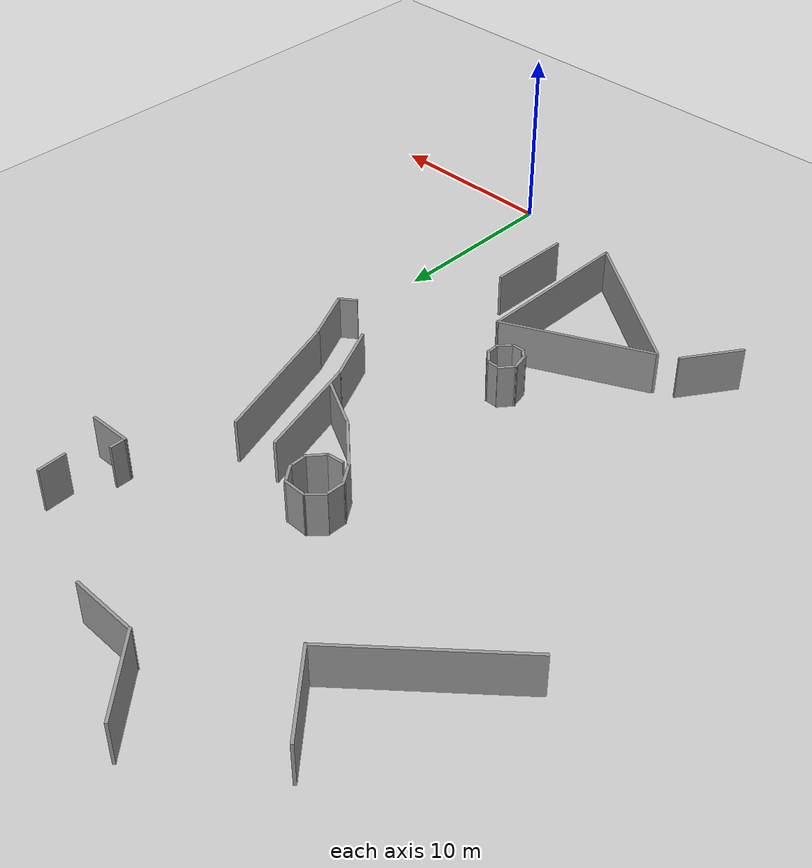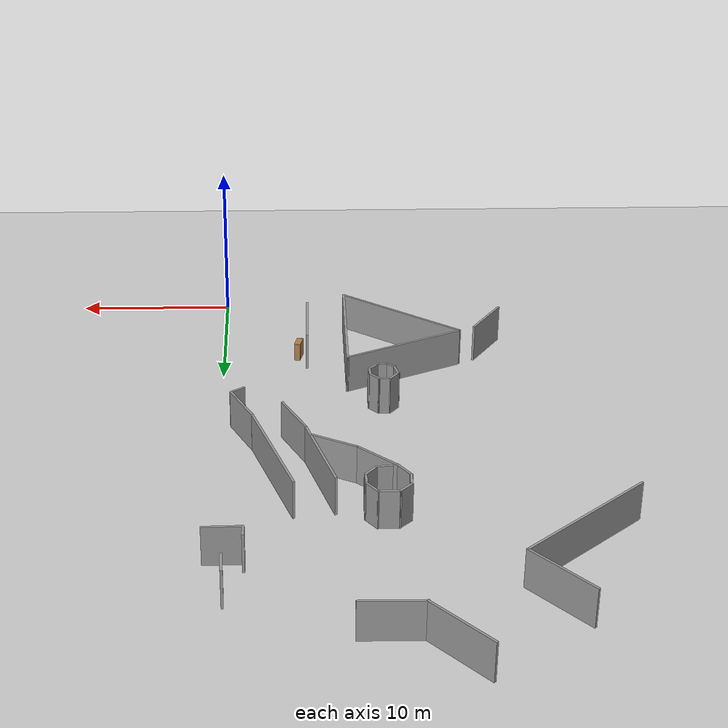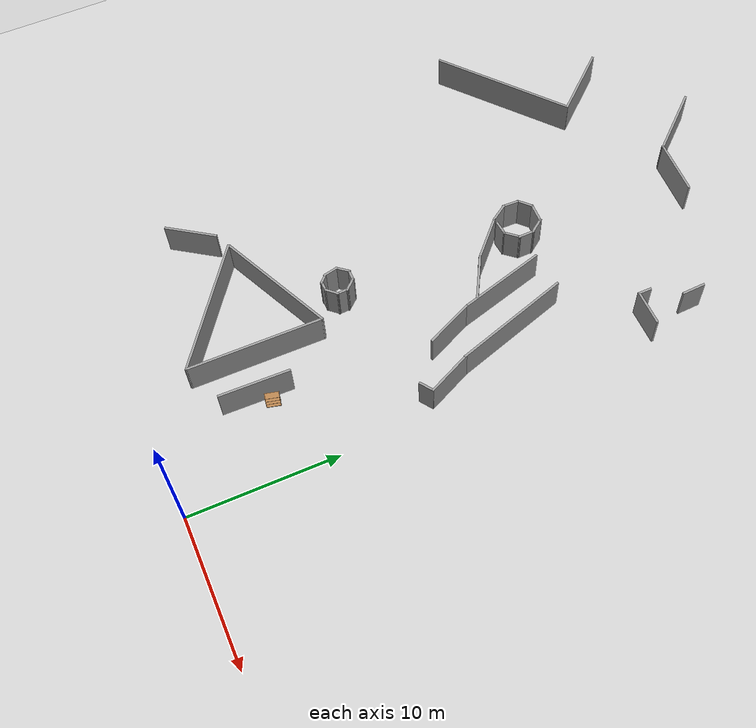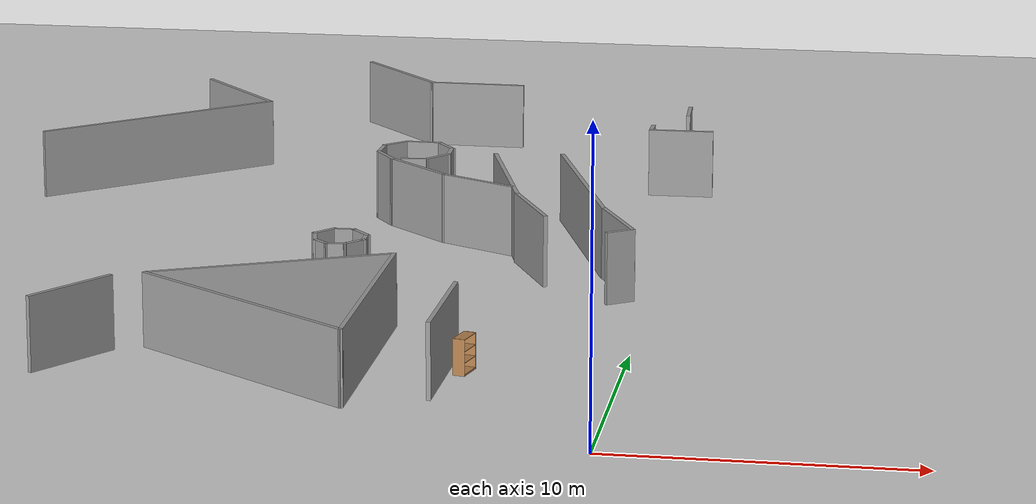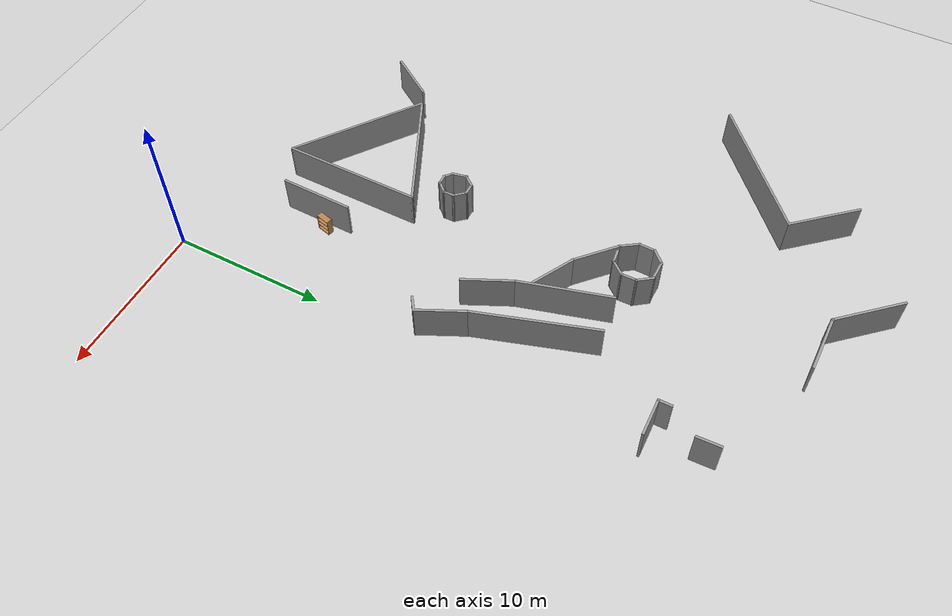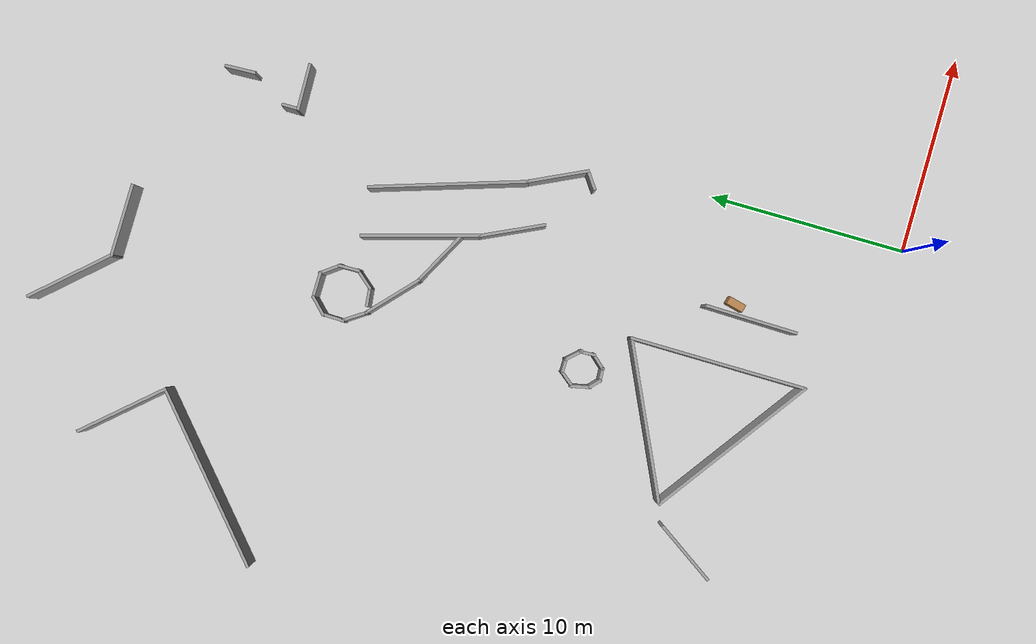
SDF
<sdf version="1.6">
 <world name="default">
  <model name="ground_plane">
   <static>1</static>
   <link name="link">
    <collision name="collision">
     <geometry><plane><normal>0 0 1</normal><size>100 100</size></plane></geometry>
     <surface><friction><ode><mu>100</mu><mu2>50</mu2></ode></friction></surface>
    </collision>
    <visual name="visual">
     <cast_shadows>0</cast_shadows>
     <geometry><plane><normal>0 0 1</normal><size>100 100</size></plane></geometry>
     <material>
      <script><uri>file://media/materials/scripts/gazebo.material</uri><name>Gazebo/Grey</name></script>
     </material>
    </visual>
   </link>
  </model>
  <model name="mall_new_reduce_size">
   <pose>-6.8092 7.5529 0 0 -0 0</pose>
   <link name="Wall_102">
    <collision name="Wall_102_Collision">
     <geometry><box><size>0.911014 0.15 2.5</size></box></geometry>
     <pose>0 0 1.25 0 -0 0</pose>
    </collision>
    <visual name="Wall_102_Visual">
     <pose>0 0 1.25 0 -0 0</pose>
     <geometry><box><size>0.911014 0.15 2.5</size></box></geometry>
     <material>
      <script><uri>file://media/materials/scripts/gazebo.material</uri><name>Gazebo/Grey</name></script>
      <ambient>1 1 1 1</ambient>
     </material>
     <meta><layer>0</layer></meta>
    </visual>
    <pose>5.13908 23.8484 0 0 -0 -1.5708</pose>
   </link>
   <link name="Wall_103">
    <collision name="Wall_103_Collision">
     <geometry><box><size>2.3915 0.15 2.5</size></box></geometry>
     <pose>0 0 1.25 0 -0 0</pose>
    </collision>
    <visual name="Wall_103_Visual">
     <pose>0 0 1.25 0 -0 0</pose>
     <geometry><box><size>2.3915 0.15 2.5</size></box></geometry>
     <material>
      <script><uri>file://media/materials/scripts/gazebo.material</uri><name>Gazebo/Grey</name></script>
      <ambient>1 1 1 1</ambient>
     </material>
     <meta><layer>0</layer></meta>
    </visual>
    <pose>6.25953 23.4864 0 0 -0 0.02316</pose>
   </link>
   <link name="Wall_245">
    <collision name="Wall_245_Collision">
     <geometry><box><size>4.70437 0.15 2.5</size></box></geometry>
     <pose>0 0 1.25 0 -0 0</pose>
    </collision>
    <visual name="Wall_245_Visual">
     <pose>0 0 1.25 0 -0 0</pose>
     <geometry><box><size>4.70437 0.15 2.5</size></box></geometry>
     <material>
      <script><uri>file://media/materials/scripts/gazebo.material</uri><name>Gazebo/Grey</name></script>
      <ambient>1 1 1 1</ambient>
     </material>
     <meta><layer>0</layer></meta>
    </visual>
    <pose>1.30808 -0.867008 0 0 -0 -1.58931</pose>
   </link>
   <link name="Wall_262">
    <collision name="Wall_262_Collision">
     <geometry><box><size>8.27755 0.15 2.5</size></box></geometry>
     <pose>0 0 1.25 0 -0 0</pose>
    </collision>
    <visual name="Wall_262_Visual">
     <pose>0 0 1.25 0 -0 0</pose>
     <geometry><box><size>8.27755 0.15 2.5</size></box></geometry>
     <material>
      <script><uri>file://media/materials/scripts/gazebo.material</uri><name>Gazebo/Grey</name></script>
      <ambient>1 1 1 1</ambient>
     </material>
     <meta><layer>0</layer></meta>
    </visual>
    <pose>-4.89745 2.80266 0 0 -0 0.439294</pose>
   </link>
   <link name="Wall_263">
    <collision name="Wall_263_Collision">
     <geometry><box><size>9.01306 0.15 2.5</size></box></geometry>
     <pose>0 0 1.25 0 -0 0</pose>
    </collision>
    <visual name="Wall_263_Visual">
     <pose>0 0 1.25 0 -0 0</pose>
     <geometry><box><size>9.01306 0.15 2.5</size></box></geometry>
     <material>
      <script><uri>file://media/materials/scripts/gazebo.material</uri><name>Gazebo/Grey</name></script>
      <ambient>1 1 1 1</ambient>
     </material>
     <meta><layer>0</layer></meta>
    </visual>
    <pose>-1.21952 0.09951 0 0 -0 -1.57583</pose>
   </link>
   <link name="Wall_264">
    <collision name="Wall_264_Collision">
     <geometry><box><size>9.26002 0.15 2.5</size></box></geometry>
     <pose>0 0 1.25 0 -0 0</pose>
    </collision>
    <visual name="Wall_264_Visual">
     <pose>0 0 1.25 0 -0 0</pose>
     <geometry><box><size>9.26002 0.15 2.5</size></box></geometry>
     <material>
      <script><uri>file://media/materials/scripts/gazebo.material</uri><name>Gazebo/Grey</name></script>
      <ambient>1 1 1 1</ambient>
     </material>
     <meta><layer>0</layer></meta>
    </visual>
    <pose>-4.95834 -1.66721 0 0 -0 2.51669</pose>
   </link>
   <link name="Wall_296">
    <collision name="Wall_296_Collision">
     <geometry><box><size>3.4822 0.15 2.5</size></box></geometry>
     <pose>0 0 1.25 0 -0 0</pose>
    </collision>
    <visual name="Wall_296_Visual">
     <pose>0 0 1.25 0 -0 0</pose>
     <geometry><box><size>3.4822 0.15 2.5</size></box></geometry>
     <material>
      <script><uri>file://media/materials/scripts/gazebo.material</uri><name>Gazebo/Grey</name></script>
      <ambient>1 1 1 1</ambient>
     </material>
     <meta><layer>0</layer></meta>
    </visual>
    <pose>-10.6311 -0.878716 0 0 -0 -2.16478</pose>
   </link>
   <link name="Wall_320">
    <collision name="Wall_320_Collision">
     <geometry><box><size>0.75 0.15 2.5</size></box></geometry>
     <pose>0 0 1.25 0 -0 0</pose>
    </collision>
    <visual name="Wall_320_Visual">
     <pose>0 0 1.25 0 -0 0</pose>
     <geometry><box><size>0.75 0.15 2.5</size></box></geometry>
     <material>
      <script><uri>file://media/materials/scripts/gazebo.material</uri><name>Gazebo/Grey</name></script>
      <ambient>1 1 1 1</ambient>
     </material>
     <meta><layer>0</layer></meta>
    </visual>
    <pose>-3.3723 7.36494 0 0 -0 0</pose>
   </link>
   <link name="Wall_321">
    <collision name="Wall_321_Collision">
     <geometry><box><size>0.996431 0.15 2.5</size></box></geometry>
     <pose>0 0 1.25 0 -0 0</pose>
    </collision>
    <visual name="Wall_321_Visual">
     <pose>0 0 1.25 0 -0 0</pose>
     <geometry><box><size>0.996431 0.15 2.5</size></box></geometry>
     <material>
      <script><uri>file://media/materials/scripts/gazebo.material</uri><name>Gazebo/Grey</name></script>
      <ambient>1 1 1 1</ambient>
     </material>
     <meta><layer>0</layer></meta>
    </visual>
    <pose>-2.78786 7.05157 0 0 -0 -0.833746</pose>
   </link>
   <link name="Wall_322">
    <collision name="Wall_322_Collision">
     <geometry><box><size>0.808487 0.15 2.5</size></box></geometry>
     <pose>0 0 1.25 0 -0 0</pose>
    </collision>
    <visual name="Wall_322_Visual">
     <pose>0 0 1.25 0 -0 0</pose>
     <geometry><box><size>0.808487 0.15 2.5</size></box></geometry>
     <material>
      <script><uri>file://media/materials/scripts/gazebo.material</uri><name>Gazebo/Grey</name></script>
      <ambient>1 1 1 1</ambient>
     </material>
     <meta><layer>0</layer></meta>
    </visual>
    <pose>-2.51788 6.42855 0 0 -0 -1.52686</pose>
   </link>
   <link name="Wall_323">
    <collision name="Wall_323_Collision">
     <geometry><box><size>0.955507 0.15 2.5</size></box></geometry>
     <pose>0 0 1.25 0 -0 0</pose>
    </collision>
    <visual name="Wall_323_Visual">
     <pose>0 0 1.25 0 -0 0</pose>
     <geometry><box><size>0.955507 0.15 2.5</size></box></geometry>
     <material>
      <script><uri>file://media/materials/scripts/gazebo.material</uri><name>Gazebo/Grey</name></script>
      <ambient>1 1 1 1</ambient>
     </material>
     <meta><layer>0</layer></meta>
    </visual>
    <pose>-2.77393 5.81089 0 0 -0 -2.30728</pose>
   </link>
   <link name="Wall_324">
    <collision name="Wall_324_Collision">
     <geometry><box><size>0.751238 0.15 2.5</size></box></geometry>
     <pose>0 0 1.25 0 -0 0</pose>
    </collision>
    <visual name="Wall_324_Visual">
     <pose>0 0 1.25 0 -0 0</pose>
     <geometry><box><size>0.751238 0.15 2.5</size></box></geometry>
     <material>
      <script><uri>file://media/materials/scripts/gazebo.material</uri><name>Gazebo/Grey</name></script>
      <ambient>1 1 1 1</ambient>
     </material>
     <meta><layer>0</layer></meta>
    </visual>
    <pose>-3.34446 5.48841 0 0 -0 -3.09342</pose>
   </link>
   <link name="Wall_325">
    <collision name="Wall_325_Collision">
     <geometry><box><size>0.725352 0.15 2.5</size></box></geometry>
     <pose>0 0 1.25 0 -0 0</pose>
    </collision>
    <visual name="Wall_325_Visual">
     <pose>0 0 1.25 0 -0 0</pose>
     <geometry><box><size>0.725352 0.15 2.5</size></box></geometry>
     <material>
      <script><uri>file://media/materials/scripts/gazebo.material</uri><name>Gazebo/Grey</name></script>
      <ambient>1 1 1 1</ambient>
     </material>
     <meta><layer>0</layer></meta>
    </visual>
    <pose>-3.85498 5.66037 0 0 -0 2.39175</pose>
   </link>
   <link name="Wall_326">
    <collision name="Wall_326_Collision">
     <geometry><box><size>1.06843 0.15 2.5</size></box></geometry>
     <pose>0 0 1.25 0 -0 0</pose>
    </collision>
    <visual name="Wall_326_Visual">
     <pose>0 0 1.25 0 -0 0</pose>
     <geometry><box><size>1.06843 0.15 2.5</size></box></geometry>
     <material>
      <script><uri>file://media/materials/scripts/gazebo.material</uri><name>Gazebo/Grey</name></script>
      <ambient>1 1 1 1</ambient>
     </material>
     <meta><layer>0</layer></meta>
    </visual>
    <pose>-4.18171 6.28601 0 0 -0 1.78347</pose>
   </link>
   <link name="Wall_327">
    <collision name="Wall_327_Collision">
     <geometry><box><size>0.999026 0.15 2.5</size></box></geometry>
     <pose>0 0 1.25 0 -0 0</pose>
    </collision>
    <visual name="Wall_327_Visual">
     <pose>0 0 1.25 0 -0 0</pose>
     <geometry><box><size>0.999026 0.15 2.5</size></box></geometry>
     <material>
      <script><uri>file://media/materials/scripts/gazebo.material</uri><name>Gazebo/Grey</name></script>
      <ambient>1 1 1 1</ambient>
     </material>
     <meta><layer>0</layer></meta>
    </visual>
    <pose>-4.0137 7.04728 0 0 -0 0.8968</pose>
   </link>
   <link name="Wall_53">
    <collision name="Wall_53_Collision">
     <geometry><box><size>4.7206 0.15 2.5</size></box></geometry>
     <pose>0 0 1.25 0 -0 0</pose>
    </collision>
    <visual name="Wall_53_Visual">
     <pose>0 0 1.25 0 -0 0</pose>
     <geometry><box><size>4.7206 0.15 2.5</size></box></geometry>
     <material>
      <script><uri>file://media/materials/scripts/gazebo.material</uri><name>Gazebo/Grey</name></script>
      <ambient>1 1 1 1</ambient>
     </material>
     <meta><layer>0</layer></meta>
    </visual>
    <pose>-5.84483 31.9838 0 0 -0 -0.834461</pose>
   </link>
   <link name="Wall_54">
    <collision name="Wall_54_Collision">
     <geometry><box><size>3.72999 0.15 2.5</size></box></geometry>
     <pose>0 0 1.25 0 -0 0</pose>
    </collision>
    <visual name="Wall_54_Visual">
     <pose>0 0 1.25 0 -0 0</pose>
     <geometry><box><size>3.72999 0.15 2.5</size></box></geometry>
     <material>
      <script><uri>file://media/materials/scripts/gazebo.material</uri><name>Gazebo/Grey</name></script>
      <ambient>1 1 1 1</ambient>
     </material>
     <meta><layer>0</layer></meta>
    </visual>
    <pose>-2.53762 30.2774 0 0 -0 -0.007328</pose>
   </link>
   <link name="Wall_58">
    <collision name="Wall_58_Collision">
     <geometry><box><size>4.86048 0.15 2.5</size></box></geometry>
     <pose>0 0 1.25 0 -0 0</pose>
    </collision>
    <visual name="Wall_58_Visual">
     <pose>0 0 1.25 0 -0 0</pose>
     <geometry><box><size>4.86048 0.15 2.5</size></box></geometry>
     <material>
      <script><uri>file://media/materials/scripts/gazebo.material</uri><name>Gazebo/Grey</name></script>
      <ambient>1 1 1 1</ambient>
     </material>
     <meta><layer>0</layer></meta>
    </visual>
    <pose>-11.5025 27.6865 0 0 -0 -0.844353</pose>
   </link>
   <link name="Wall_59">
    <collision name="Wall_59_Collision">
     <geometry><box><size>9.7239 0.15 2.5</size></box></geometry>
     <pose>0 0 1.25 0 -0 0</pose>
    </collision>
    <visual name="Wall_59_Visual">
     <pose>0 0 1.25 0 -0 0</pose>
     <geometry><box><size>9.7239 0.15 2.5</size></box></geometry>
     <material>
      <script><uri>file://media/materials/scripts/gazebo.material</uri><name>Gazebo/Grey</name></script>
      <ambient>1 1 1 1</ambient>
     </material>
     <meta><layer>0</layer></meta>
    </visual>
    <pose>-13.5451 22.7671 0 0 -0 -2.42416</pose>
   </link>
   <link name="Wall_75">
    <collision name="Wall_75_Collision">
     <geometry><box><size>0.996724 0.15 2.5</size></box></geometry>
     <pose>0 0 1.25 0 -0 0</pose>
    </collision>
    <visual name="Wall_75_Visual">
     <pose>0 0 1.25 0 -0 0</pose>
     <geometry><box><size>0.996724 0.15 2.5</size></box></geometry>
     <material>
      <script><uri>file://media/materials/scripts/gazebo.material</uri><name>Gazebo/Grey</name></script>
      <ambient>1 1 1 1</ambient>
     </material>
     <meta><layer>0</layer></meta>
    </visual>
    <pose>-2.811 17.5721 0 0 -0 0.113209</pose>
   </link>
   <link name="Wall_76">
    <collision name="Wall_76_Collision">
     <geometry><box><size>1.17578 0.15 2.5</size></box></geometry>
     <pose>0 0 1.25 0 -0 0</pose>
    </collision>
    <visual name="Wall_76_Visual">
     <pose>0 0 1.25 0 -0 0</pose>
     <geometry><box><size>1.17578 0.15 2.5</size></box></geometry>
     <material>
      <script><uri>file://media/materials/scripts/gazebo.material</uri><name>Gazebo/Grey</name></script>
      <ambient>1 1 1 1</ambient>
     </material>
     <meta><layer>0</layer></meta>
    </visual>
    <pose>-2.042 18.0205 0 0 -0 0.869416</pose>
   </link>
   <link name="Wall_77">
    <collision name="Wall_77_Collision">
     <geometry><box><size>1.10885 0.15 2.5</size></box></geometry>
     <pose>0 0 1.25 0 -0 0</pose>
    </collision>
    <visual name="Wall_77_Visual">
     <pose>0 0 1.25 0 -0 0</pose>
     <geometry><box><size>1.10885 0.15 2.5</size></box></geometry>
     <material>
      <script><uri>file://media/materials/scripts/gazebo.material</uri><name>Gazebo/Grey</name></script>
      <ambient>1 1 1 1</ambient>
     </material>
     <meta><layer>0</layer></meta>
    </visual>
    <pose>-1.71974 18.8742 0 0 -0 1.58893</pose>
   </link>
   <link name="Wall_78">
    <collision name="Wall_78_Collision">
     <geometry><box><size>1.20591 0.15 2.5</size></box></geometry>
     <pose>0 0 1.25 0 -0 0</pose>
    </collision>
    <visual name="Wall_78_Visual">
     <pose>0 0 1.25 0 -0 0</pose>
     <geometry><box><size>1.20591 0.15 2.5</size></box></geometry>
     <material>
      <script><uri>file://media/materials/scripts/gazebo.material</uri><name>Gazebo/Grey</name></script>
      <ambient>1 1 1 1</ambient>
     </material>
     <meta><layer>0</layer></meta>
    </visual>
    <pose>-2.02604 19.7599 0 0 -0 2.2101</pose>
   </link>
   <link name="Wall_79">
    <collision name="Wall_79_Collision">
     <geometry><box><size>1.36534 0.15 2.5</size></box></geometry>
     <pose>0 0 1.25 0 -0 0</pose>
    </collision>
    <visual name="Wall_79_Visual">
     <pose>0 0 1.25 0 -0 0</pose>
     <geometry><box><size>1.36534 0.15 2.5</size></box></geometry>
     <material>
      <script><uri>file://media/materials/scripts/gazebo.material</uri><name>Gazebo/Grey</name></script>
      <ambient>1 1 1 1</ambient>
     </material>
     <meta><layer>0</layer></meta>
    </visual>
    <pose>-2.95734 20.1705 0 0 -0 3.13444</pose>
   </link>
   <link name="Wall_80">
    <collision name="Wall_80_Collision">
     <geometry><box><size>1.1209 0.15 2.5</size></box></geometry>
     <pose>0 0 1.25 0 -0 0</pose>
    </collision>
    <visual name="Wall_80_Visual">
     <pose>0 0 1.25 0 -0 0</pose>
     <geometry><box><size>1.1209 0.15 2.5</size></box></geometry>
     <material>
      <script><uri>file://media/materials/scripts/gazebo.material</uri><name>Gazebo/Grey</name></script>
      <ambient>1 1 1 1</ambient>
     </material>
     <meta><layer>0</layer></meta>
    </visual>
    <pose>-3.91038 19.8251 0 0 -0 -2.36253</pose>
   </link>
   <link name="Wall_81">
    <collision name="Wall_81_Collision">
     <geometry><box><size>1.11992 0.15 2.5</size></box></geometry>
     <pose>0 0 1.25 0 -0 0</pose>
    </collision>
    <visual name="Wall_81_Visual">
     <pose>0 0 1.25 0 -0 0</pose>
     <geometry><box><size>1.11992 0.15 2.5</size></box></geometry>
     <material>
      <script><uri>file://media/materials/scripts/gazebo.material</uri><name>Gazebo/Grey</name></script>
      <ambient>1 1 1 1</ambient>
     </material>
     <meta><layer>0</layer></meta>
    </visual>
    <pose>-4.26885 18.9471 0 0 -0 -1.5977</pose>
   </link>
   <link name="Wall_82">
    <collision name="Wall_82_Collision">
     <geometry><box><size>1.37559 0.15 2.5</size></box></geometry>
     <pose>0 0 1.25 0 -0 0</pose>
    </collision>
    <visual name="Wall_82_Visual">
     <pose>0 0 1.25 0 -0 0</pose>
     <geometry><box><size>1.37559 0.15 2.5</size></box></geometry>
     <material>
      <script><uri>file://media/materials/scripts/gazebo.material</uri><name>Gazebo/Grey</name></script>
      <ambient>1 1 1 1</ambient>
     </material>
     <meta><layer>0</layer></meta>
    </visual>
    <pose>-3.93733 17.9642 0 0 -0 -0.973652</pose>
   </link>
   <link name="Wall_83">
    <collision name="Wall_83_Collision">
     <geometry><box><size>3.17702 0.15 2.5</size></box></geometry>
     <pose>0 0 1.25 0 -0 0</pose>
    </collision>
    <visual name="Wall_83_Visual">
     <pose>0 0 1.25 0 -0 0</pose>
     <geometry><box><size>3.17702 0.15 2.5</size></box></geometry>
     <material>
      <script><uri>file://media/materials/scripts/gazebo.material</uri><name>Gazebo/Grey</name></script>
      <ambient>1 1 1 1</ambient>
     </material>
     <meta><layer>0</layer></meta>
    </visual>
    <pose>-2.47787 16.4426 0 0 -0 -0.742728</pose>
   </link>
   <link name="Wall_84">
    <collision name="Wall_84_Collision">
     <geometry><box><size>3.09961 0.15 2.5</size></box></geometry>
     <pose>0 0 1.25 0 -0 0</pose>
    </collision>
    <visual name="Wall_84_Visual">
     <pose>0 0 1.25 0 -0 0</pose>
     <geometry><box><size>3.09961 0.15 2.5</size></box></geometry>
     <material>
      <script><uri>file://media/materials/scripts/gazebo.material</uri><name>Gazebo/Grey</name></script>
      <ambient>1 1 1 1</ambient>
     </material>
     <meta><layer>0</layer></meta>
    </visual>
    <pose>-0.052404 14.7261 0 0 -0 -0.489119</pose>
   </link>
   <link name="Wall_87">
    <collision name="Wall_87_Collision">
     <geometry><box><size>5.96136 0.15 2.5</size></box></geometry>
     <pose>0 0 1.25 0 -0 0</pose>
    </collision>
    <visual name="Wall_87_Visual">
     <pose>0 0 1.25 0 -0 0</pose>
     <geometry><box><size>5.96136 0.15 2.5</size></box></geometry>
     <material>
      <script><uri>file://media/materials/scripts/gazebo.material</uri><name>Gazebo/Grey</name></script>
      <ambient>1 1 1 1</ambient>
     </material>
     <meta><layer>0</layer></meta>
    </visual>
    <pose>0.791494 15.9362 0 0 -0 -1.29247</pose>
   </link>
   <link name="Wall_88">
    <collision name="Wall_88_Collision">
     <geometry><box><size>3.37715 0.15 2.5</size></box></geometry>
     <pose>0 0 1.25 0 -0 0</pose>
    </collision>
    <visual name="Wall_88_Visual">
     <pose>0 0 1.25 0 -0 0</pose>
     <geometry><box><size>3.37715 0.15 2.5</size></box></geometry>
     <material>
      <script><uri>file://media/materials/scripts/gazebo.material</uri><name>Gazebo/Grey</name></script>
      <ambient>1 1 1 1</ambient>
     </material>
     <meta><layer>0</layer></meta>
    </visual>
    <pose>2.28271 11.662 0 0 -0 -1.12695</pose>
   </link>
   <link name="Wall_91">
    <collision name="Wall_91_Collision">
     <geometry><box><size>7.96646 0.15 2.5</size></box></geometry>
     <pose>0 0 1.25 0 -0 0</pose>
    </collision>
    <visual name="Wall_91_Visual">
     <pose>0 0 1.25 0 -0 0</pose>
     <geometry><box><size>7.96646 0.15 2.5</size></box></geometry>
     <material>
      <script><uri>file://media/materials/scripts/gazebo.material</uri><name>Gazebo/Grey</name></script>
      <ambient>1 1 1 1</ambient>
     </material>
     <meta><layer>0</layer></meta>
    </visual>
    <pose>3.59702 15.3339 0 0 -0 -1.25918</pose>
   </link>
   <link name="Wall_92">
    <collision name="Wall_92_Collision">
     <geometry><box><size>3.15983 0.15 2.5</size></box></geometry>
     <pose>0 0 1.25 0 -0 0</pose>
    </collision>
    <visual name="Wall_92_Visual">
     <pose>0 0 1.25 0 -0 0</pose>
     <geometry><box><size>3.15983 0.15 2.5</size></box></geometry>
     <material>
      <script><uri>file://media/materials/scripts/gazebo.material</uri><name>Gazebo/Grey</name></script>
      <ambient>1 1 1 1</ambient>
     </material>
     <meta><layer>0</layer></meta>
    </visual>
    <pose>5.46962 10.2341 0 0 -0 -1.12329</pose>
   </link>
   <link name="Wall_93">
    <collision name="Wall_93_Collision">
     <geometry><box><size>1.06714 0.15 2.5</size></box></geometry>
     <pose>0 0 1.25 0 -0 0</pose>
    </collision>
    <visual name="Wall_93_Visual">
     <pose>0 0 1.25 0 -0 0</pose>
     <geometry><box><size>1.06714 0.15 2.5</size></box></geometry>
     <material>
      <script><uri>file://media/materials/scripts/gazebo.material</uri><name>Gazebo/Grey</name></script>
      <ambient>1 1 1 1</ambient>
     </material>
     <meta><layer>0</layer></meta>
    </visual>
    <pose>5.74679 8.59882 0 0 -0 -2.52467</pose>
   </link>
   <link name="Wall_96">
    <collision name="Wall_96_Collision">
     <geometry><box><size>1.56057 0.15 2.5</size></box></geometry>
     <pose>0 0 1.25 0 -0 0</pose>
    </collision>
    <visual name="Wall_96_Visual">
     <pose>0 0 1.25 0 -0 0</pose>
     <geometry><box><size>1.56057 0.15 2.5</size></box></geometry>
     <material>
      <script><uri>file://media/materials/scripts/gazebo.material</uri><name>Gazebo/Grey</name></script>
      <ambient>1 1 1 1</ambient>
     </material>
     <meta><layer>0</layer></meta>
    </visual>
    <pose>6.23658 26.75 0 0 -0 -1.52873</pose>
   </link>
   <static>1</static>
  </model>
  <model name="bookshelf_16">
   <static>1</static>
   <link name="link">
    <inertial><mass>1</mass></inertial>
    <collision name="back">
     <pose>0 0.005 0.6 0 -0 0</pose>
     <geometry><box><size>0.9 0.01 1.2</size></box></geometry>
    </collision>
    <visual name="visual1">
     <pose>0 0.005 0.6 0 -0 0</pose>
     <geometry><box><size>0.9 0.01 1.2</size></box></geometry>
     <material>
      <script><uri>file://media/materials/scripts/gazebo.material</uri><name>Gazebo/Wood</name></script>
     </material>
    </visual>
    <collision name="left_side">
     <pose>0.45 -0.195 0.6 0 -0 0</pose>
     <geometry><box><size>0.02 0.4 1.2</size></box></geometry>
    </collision>
    <visual name="visual2">
     <pose>0.45 -0.195 0.6 0 -0 0</pose>
     <geometry><box><size>0.02 0.4 1.2</size></box></geometry>
     <material>
      <script><uri>file://media/materials/scripts/gazebo.material</uri><name>Gazebo/Wood</name></script>
     </material>
    </visual>
    <collision name="right_side">
     <pose>-0.45 -0.195 0.6 0 -0 0</pose>
     <geometry><box><size>0.02 0.4 1.2</size></box></geometry>
    </collision>
    <visual name="visual3">
     <pose>-0.45 -0.195 0.6 0 -0 0</pose>
     <geometry><box><size>0.02 0.4 1.2</size></box></geometry>
     <material>
      <script><uri>file://media/materials/scripts/gazebo.material</uri><name>Gazebo/Wood</name></script>
     </material>
    </visual>
    <collision name="bottom">
     <pose>0 -0.195 0.03 0 -0 0</pose>
     <geometry><box><size>0.88 0.4 0.06</size></box></geometry>
    </collision>
    <visual name="visual4">
     <pose>0 -0.195 0.03 0 -0 0</pose>
     <geometry><box><size>0.88 0.4 0.06</size></box></geometry>
     <material>
      <script><uri>file://media/materials/scripts/gazebo.material</uri><name>Gazebo/Wood</name></script>
     </material>
    </visual>
    <collision name="top">
     <pose>0 -0.195 1.19 0 -0 0</pose>
     <geometry><box><size>0.88 0.4 0.02</size></box></geometry>
    </collision>
    <visual name="visual5">
     <pose>0 -0.195 1.19 0 -0 0</pose>
     <geometry><box><size>0.88 0.4 0.02</size></box></geometry>
     <material>
      <script><uri>file://media/materials/scripts/gazebo.material</uri><name>Gazebo/Wood</name></script>
     </material>
    </visual>
    <collision name="low_shelf">
     <pose>0 -0.195 0.43 0 -0 0</pose>
     <geometry><box><size>0.88 0.4 0.02</size></box></geometry>
    </collision>
    <visual name="visual6">
     <pose>0 -0.195 0.43 0 -0 0</pose>
     <geometry><box><size>0.88 0.4 0.02</size></box></geometry>
     <material>
      <script><uri>file://media/materials/scripts/gazebo.material</uri><name>Gazebo/Wood</name></script>
     </material>
    </visual>
    <collision name="high_shelf">
     <pose>0 -0.195 0.8 0 -0 0</pose>
     <geometry><box><size>0.88 0.4 0.02</size></box></geometry>
    </collision>
    <visual name="visual7">
     <pose>0 -0.195 0.8 0 -0 0</pose>
     <geometry><box><size>0.88 0.4 0.02</size></box></geometry>
     <material>
      <script><uri>file://media/materials/scripts/gazebo.material</uri><name>Gazebo/Wood</name></script>
     </material>
    </visual>
   </link>
   <pose>-5.12092 7.51403 0 0 -0 1.32927</pose>
  </model>
 </world>
</sdf>
